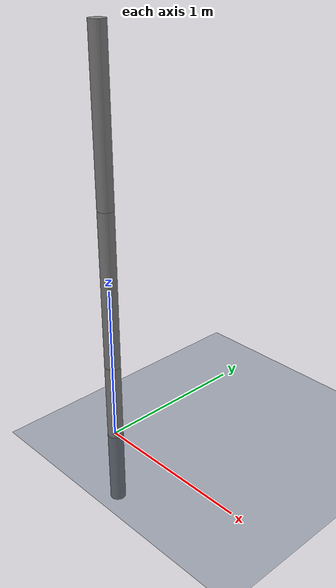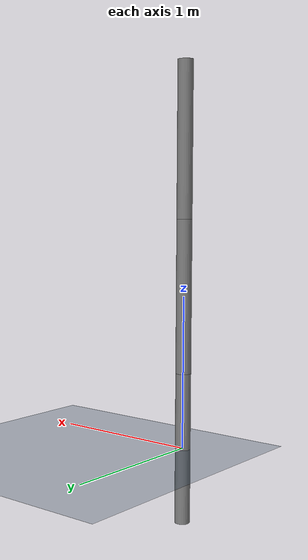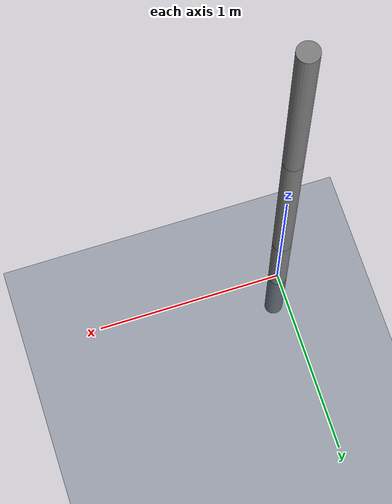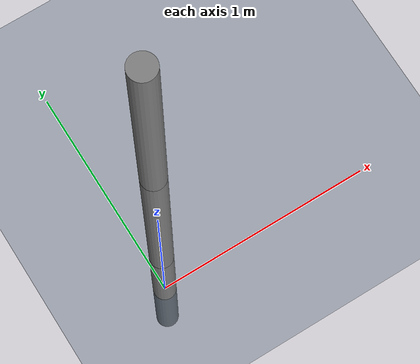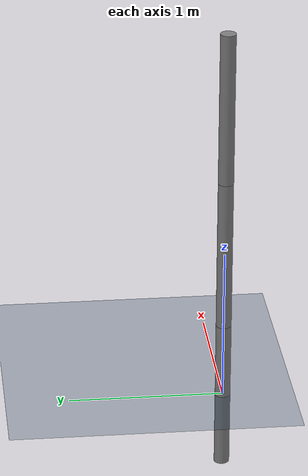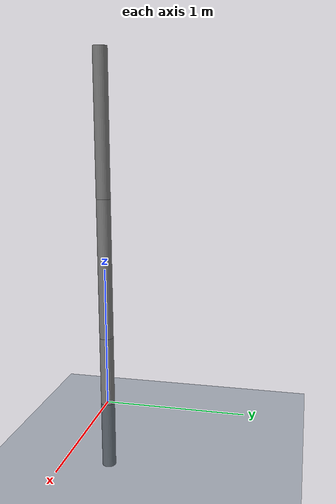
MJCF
<mujoco model="arm scene">

  <include file="./arm.xml"/>

  <statistic center="0 0 0.55" extent="1.1"/>

  <visual>
    <headlight diffuse="0.6 0.6 0.6" ambient="0.3 0.3 0.3" specular="0 0 0"/>
    <rgba haze="0.15 0.25 0.35 1"/>
    <global azimuth="150" elevation="-20"/>
  </visual>

  <asset>
    <texture type="skybox" builtin="gradient" rgb1="0.3 0.5 0.7" rgb2="0 0 0" width="512" height="3072"/>
    <texture type="2d" name="groundplane" builtin="checker" mark="edge" rgb1="0.2 0.3 0.4" rgb2="0.1 0.2 0.3"
      markrgb="0.8 0.8 0.8" width="300" height="300"/>
    <material name="groundplane" texture="groundplane" texuniform="true" texrepeat="5 5" reflectance="0.2"/>
  </asset>

  <worldbody>
    <light pos="0 0 3" dir="0 0 -1" directional="false"/>
    <geom name="floor" size="0 0 .125" type="plane" material="groundplane" conaffinity="15" condim="3"/>
  </worldbody>

</mujoco>

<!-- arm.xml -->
<mujoco model="arm">
    <compiler angle="radian" autolimits="true"/>
    <size njmax="500" nconmax="100"/>
    <default/>
    <worldbody>
      <body name="first_link" pos="0 0 2.5">
        <inertial pos="0 0 -0.5" mass="1" diaginertia="0.02 0.02 0.002"/>
        <joint name="shoulder" type="hinge" pos="0 0 0" axis="1 0 0" range="-3.1415 3.1415"/>
        <geom size="0.05 0.5" pos="0 0 -0.5" type="cylinder" contype="0" conaffinity="0" group="1" density="0"/>
        <body name="second_link" pos="0 0 -1">
          <inertial pos="0 0 -0.5" mass="1" diaginertia="0.02 0.02 0.002"/>
          <joint name="elbow" type="hinge" pos="0 0 0" axis="1 0 0" range="-3.1415 3.1415"/>
          <geom size="0.05 0.5" pos="0 0 -0.5" type="cylinder" contype="0" conaffinity="0" group="1" density="0"/>
          <body name="third_link" pos="0 0 -1">
            <inertial pos="0 0 -0.5" mass="1" diaginertia="0.02 0.02 0.002"/>
            <joint name="wrist" type="hinge" pos="0 0 0" axis="1 0 0" range="-3.1415 3.1415"/>
            <geom size="0.05 0.5" pos="0 0 -0.5" type="cylinder" contype="0" conaffinity="0" group="1" density="0"/>
          </body>
        </body>
      </body>
    </worldbody>
    <actuator>
        <motor name='shoulder' joint='shoulder'/>
        <motor name='elbow' joint='elbow'/>
        <motor name='wrist' joint='wrist'/>
    </actuator>
  </mujoco>
